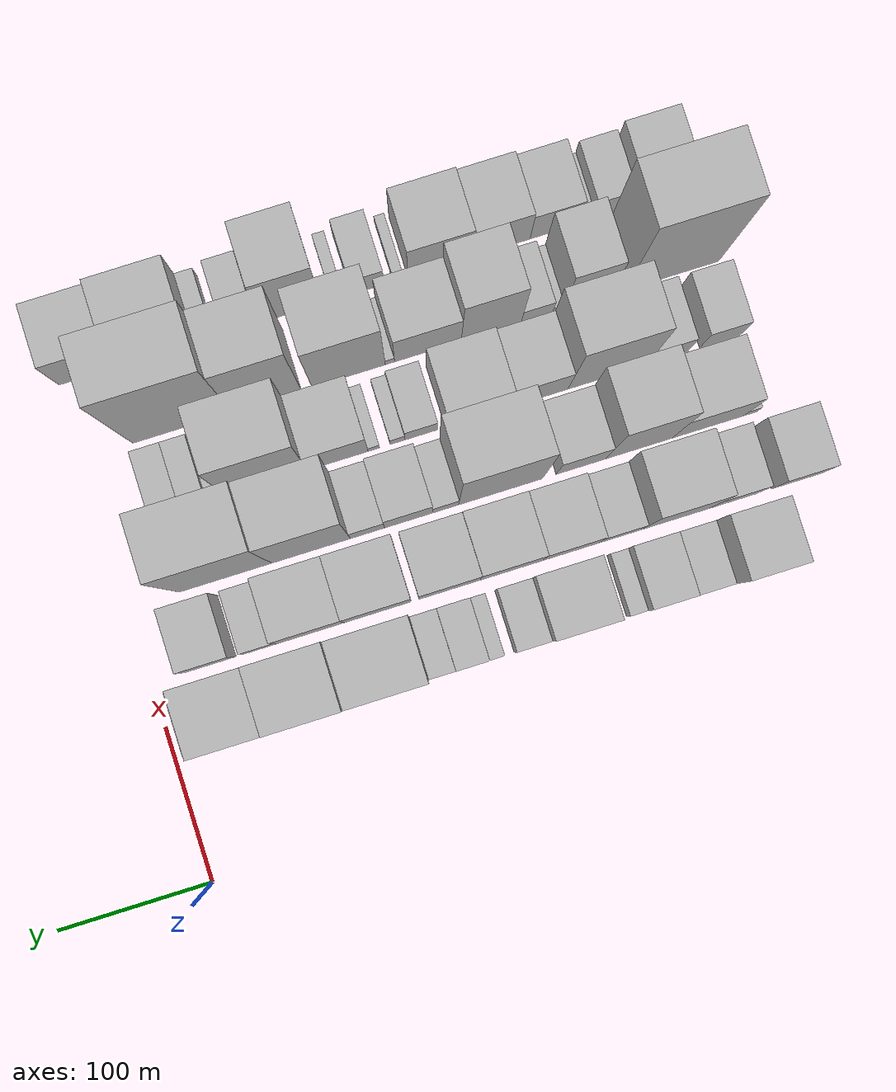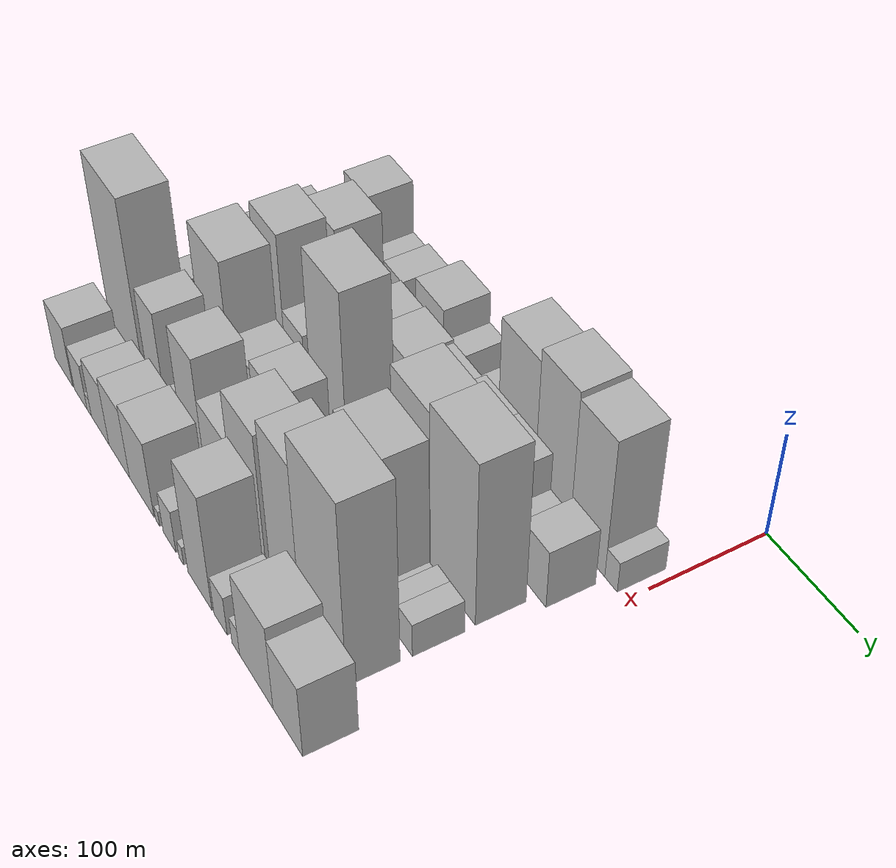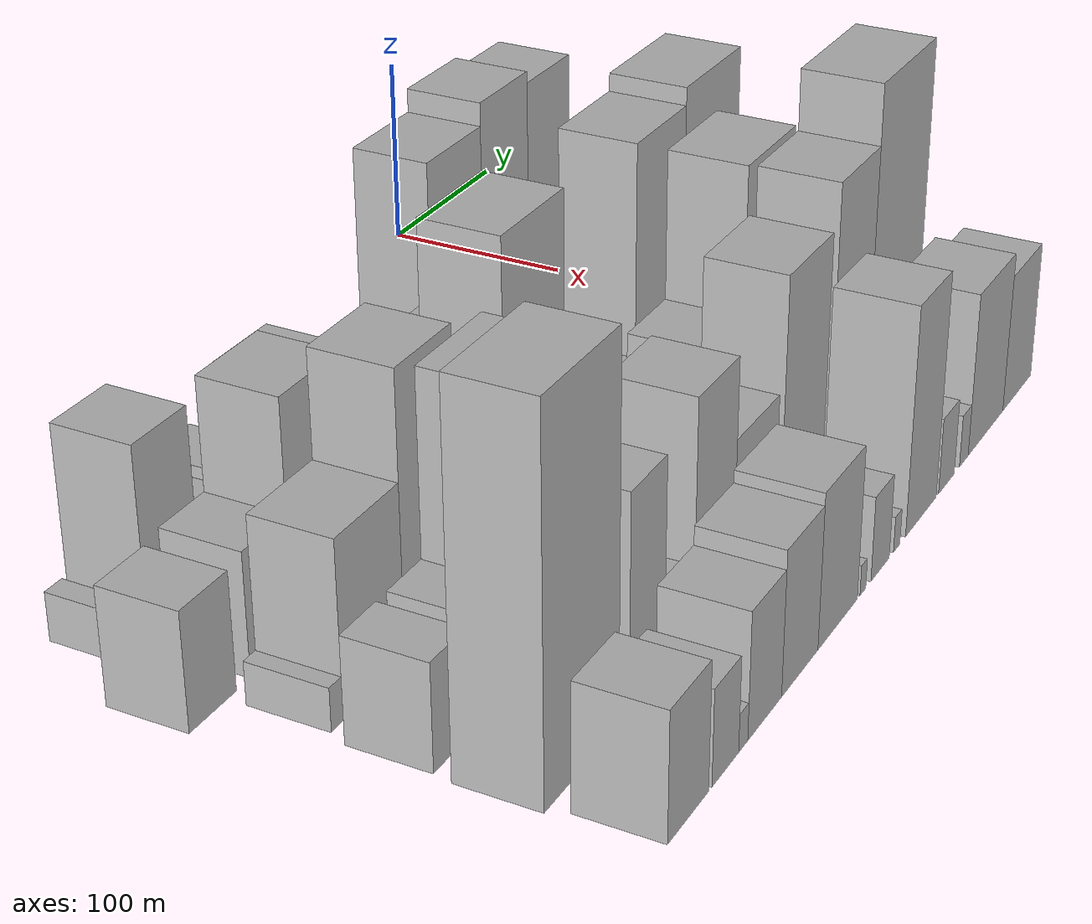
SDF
<sdf version="1.6">
 <world name="default">
  <model name="building_13">
   <static>1</static>
   <pose>100.0000 -405.1255 0 0.000000 0.000000 0.000000</pose>
   <link name="link">
    <pose>0 0 12.00 0 0 0</pose>
    <collision name="collision"><geometry><box><size>40.0000 11.6210 24.0000</size></box></geometry></collision>
    <visual name="visual">
     <cast_shadows>0</cast_shadows>
     <geometry><box><size>40.0000 11.6210 24.0000</size></box></geometry>
     <material>
      <script>
       <uri>model://HANNAS_wall/materials/scripts</uri>
       <uri>model://HANNAS_wall/materials/textures</uri>
       <name>vrc/HANNAS_wall</name>
      </script>
     </material>
    </visual>
   </link>
  </model>
  <model name="building_14">
   <static>1</static>
   <pose>100.0000 -377.6499 0 0.000000 0.000000 0.000000</pose>
   <link name="link">
    <pose>0 0 48.00 0 0 0</pose>
    <collision name="collision"><geometry><box><size>40.0000 37.3301 96.0000</size></box></geometry></collision>
    <visual name="visual">
     <cast_shadows>0</cast_shadows>
     <geometry><box><size>40.0000 37.3301 96.0000</size></box></geometry>
     <material>
      <script>
       <uri>model://HANNAS_wall/materials/scripts</uri>
       <uri>model://HANNAS_wall/materials/textures</uri>
       <name>vrc/HANNAS_wall</name>
      </script>
     </material>
    </visual>
   </link>
  </model>
  <model name="building_15">
   <static>1</static>
   <pose>100.0000 -346.9842 0 0.000000 0.000000 0.000000</pose>
   <link name="link">
    <pose>0 0 22.50 0 0 0</pose>
    <collision name="collision"><geometry><box><size>40.0000 24.0015 45.0000</size></box></geometry></collision>
    <visual name="visual">
     <cast_shadows>0</cast_shadows>
     <geometry><box><size>40.0000 24.0015 45.0000</size></box></geometry>
     <material>
      <script>
       <uri>model://HANNAS_wall/materials/scripts</uri>
       <uri>model://HANNAS_wall/materials/textures</uri>
       <name>vrc/HANNAS_wall</name>
      </script>
     </material>
    </visual>
   </link>
  </model>
  <model name="building_16">
   <static>1</static>
   <pose>100.0000 -320.3725 0 0.000000 0.000000 0.000000</pose>
   <link name="link">
    <pose>0 0 25.50 0 0 0</pose>
    <collision name="collision"><geometry><box><size>40.0000 29.2219 51.0000</size></box></geometry></collision>
    <visual name="visual">
     <cast_shadows>0</cast_shadows>
     <geometry><box><size>40.0000 29.2219 51.0000</size></box></geometry>
     <material>
      <script>
       <uri>model://HANNAS_wall/materials/scripts</uri>
       <uri>model://HANNAS_wall/materials/textures</uri>
       <name>vrc/HANNAS_wall</name>
      </script>
     </material>
    </visual>
   </link>
  </model>
  <model name="building_17">
   <static>1</static>
   <pose>100.0000 -300.0065 0 0.000000 0.000000 0.000000</pose>
   <link name="link">
    <pose>0 0 12.00 0 0 0</pose>
    <collision name="collision"><geometry><box><size>40.0000 11.5102 24.0000</size></box></geometry></collision>
    <visual name="visual">
     <cast_shadows>0</cast_shadows>
     <geometry><box><size>40.0000 11.5102 24.0000</size></box></geometry>
     <material>
      <script>
       <uri>model://HANNAS_wall/materials/scripts</uri>
       <uri>model://HANNAS_wall/materials/textures</uri>
       <name>vrc/HANNAS_wall</name>
      </script>
     </material>
    </visual>
   </link>
  </model>
  <model name="building_18">
   <static>1</static>
   <pose>100.0000 -264.2388 0 0.000000 0.000000 0.000000</pose>
   <link name="link">
    <pose>0 0 36.00 0 0 0</pose>
    <collision name="collision"><geometry><box><size>40.0000 42.0253 72.0000</size></box></geometry></collision>
    <visual name="visual">
     <cast_shadows>0</cast_shadows>
     <geometry><box><size>40.0000 42.0253 72.0000</size></box></geometry>
     <material>
      <script>
       <uri>model://HANNAS_wall/materials/scripts</uri>
       <uri>model://HANNAS_wall/materials/textures</uri>
       <name>vrc/HANNAS_wall</name>
      </script>
     </material>
    </visual>
   </link>
  </model>
  <model name="building_19">
   <static>1</static>
   <pose>100.0000 -231.9857 0 0.000000 0.000000 0.000000</pose>
   <link name="link">
    <pose>0 0 21.00 0 0 0</pose>
    <collision name="collision"><geometry><box><size>40.0000 22.4809 42.0000</size></box></geometry></collision>
    <visual name="visual">
     <cast_shadows>0</cast_shadows>
     <geometry><box><size>40.0000 22.4809 42.0000</size></box></geometry>
     <material>
      <script>
       <uri>model://HANNAS_wall/materials/scripts</uri>
       <uri>model://HANNAS_wall/materials/textures</uri>
       <name>vrc/HANNAS_wall</name>
      </script>
     </material>
    </visual>
   </link>
  </model>
  <model name="building_20">
   <static>1</static>
   <pose>100.0000 -208.7718 0 0.000000 0.000000 0.000000</pose>
   <link name="link">
    <pose>0 0 12.00 0 0 0</pose>
    <collision name="collision"><geometry><box><size>40.0000 9.9469 24.0000</size></box></geometry></collision>
    <visual name="visual">
     <cast_shadows>0</cast_shadows>
     <geometry><box><size>40.0000 9.9469 24.0000</size></box></geometry>
     <material>
      <script>
       <uri>model://HANNAS_wall/materials/scripts</uri>
       <uri>model://HANNAS_wall/materials/textures</uri>
       <name>vrc/HANNAS_wall</name>
      </script>
     </material>
    </visual>
   </link>
  </model>
  <model name="building_21">
   <static>1</static>
   <pose>100.0000 -193.0717 0 0.000000 0.000000 0.000000</pose>
   <link name="link">
    <pose>0 0 18.00 0 0 0</pose>
    <collision name="collision"><geometry><box><size>40.0000 21.4533 36.0000</size></box></geometry></collision>
    <visual name="visual">
     <cast_shadows>0</cast_shadows>
     <geometry><box><size>40.0000 21.4533 36.0000</size></box></geometry>
     <material>
      <script>
       <uri>model://HANNAS_wall/materials/scripts</uri>
       <uri>model://HANNAS_wall/materials/textures</uri>
       <name>vrc/HANNAS_wall</name>
      </script>
     </material>
    </visual>
   </link>
  </model>
  <model name="building_22">
   <static>1</static>
   <pose>100.0000 -173.7144 0 0.000000 0.000000 0.000000</pose>
   <link name="link">
    <pose>0 0 15.00 0 0 0</pose>
    <collision name="collision"><geometry><box><size>40.0000 17.2611 30.0000</size></box></geometry></collision>
    <visual name="visual">
     <cast_shadows>0</cast_shadows>
     <geometry><box><size>40.0000 17.2611 30.0000</size></box></geometry>
     <material>
      <script>
       <uri>model://HANNAS_wall/materials/scripts</uri>
       <uri>model://HANNAS_wall/materials/textures</uri>
       <name>vrc/HANNAS_wall</name>
      </script>
     </material>
    </visual>
   </link>
  </model>
  <model name="building_23">
   <static>1</static>
   <pose>100.0000 -139.9668 0 0.000000 0.000000 0.000000</pose>
   <link name="link">
    <pose>0 0 64.50 0 0 0</pose>
    <collision name="collision"><geometry><box><size>40.0000 50.2341 129.0000</size></box></geometry></collision>
    <visual name="visual">
     <cast_shadows>0</cast_shadows>
     <geometry><box><size>40.0000 50.2341 129.0000</size></box></geometry>
     <material>
      <script>
       <uri>model://HANNAS_wall/materials/scripts</uri>
       <uri>model://HANNAS_wall/materials/textures</uri>
       <name>vrc/HANNAS_wall</name>
      </script>
     </material>
    </visual>
   </link>
  </model>
  <model name="building_24">
   <static>1</static>
   <pose>100.0000 -91.5264 0 0.000000 0.000000 0.000000</pose>
   <link name="link">
    <pose>0 0 70.50 0 0 0</pose>
    <collision name="collision"><geometry><box><size>40.0000 46.6467 141.0000</size></box></geometry></collision>
    <visual name="visual">
     <cast_shadows>0</cast_shadows>
     <geometry><box><size>40.0000 46.6467 141.0000</size></box></geometry>
     <material>
      <script>
       <uri>model://HANNAS_wall/materials/scripts</uri>
       <uri>model://HANNAS_wall/materials/textures</uri>
       <name>vrc/HANNAS_wall</name>
      </script>
     </material>
    </visual>
   </link>
  </model>
  <model name="building_25">
   <static>1</static>
   <pose>100.0000 -46.1873 0 0.000000 0.000000 0.000000</pose>
   <link name="link">
    <pose>0 0 67.50 0 0 0</pose>
    <collision name="collision"><geometry><box><size>40.0000 44.0315 135.0000</size></box></geometry></collision>
    <visual name="visual">
     <cast_shadows>0</cast_shadows>
     <geometry><box><size>40.0000 44.0315 135.0000</size></box></geometry>
     <material>
      <script>
       <uri>model://HANNAS_wall/materials/scripts</uri>
       <uri>model://HANNAS_wall/materials/textures</uri>
       <name>vrc/HANNAS_wall</name>
      </script>
     </material>
    </visual>
   </link>
  </model>
  <model name="building_26">
   <static>1</static>
   <pose>100.0000 -16.5393 0 0.000000 0.000000 0.000000</pose>
   <link name="link">
    <pose>0 0 15.00 0 0 0</pose>
    <collision name="collision"><geometry><box><size>40.0000 15.2647 30.0000</size></box></geometry></collision>
    <visual name="visual">
     <cast_shadows>0</cast_shadows>
     <geometry><box><size>40.0000 15.2647 30.0000</size></box></geometry>
     <material>
      <script>
       <uri>model://HANNAS_wall/materials/scripts</uri>
       <uri>model://HANNAS_wall/materials/textures</uri>
       <name>vrc/HANNAS_wall</name>
      </script>
     </material>
    </visual>
   </link>
  </model>
  <model name="building_63">
   <static>1</static>
   <pose>149.0000 -421.5422 0 0.000000 0.000000 0.000000</pose>
   <link name="link">
    <pose>0 0 28.50 0 0 0</pose>
    <collision name="collision"><geometry><box><size>40.0000 32.6156 57.0000</size></box></geometry></collision>
    <visual name="visual">
     <cast_shadows>0</cast_shadows>
     <geometry><box><size>40.0000 32.6156 57.0000</size></box></geometry>
     <material>
      <script>
       <uri>model://HANNAS_wall/materials/scripts</uri>
       <uri>model://HANNAS_wall/materials/textures</uri>
       <name>vrc/HANNAS_wall</name>
      </script>
     </material>
    </visual>
   </link>
  </model>
  <model name="building_64">
   <static>1</static>
   <pose>149.0000 -379.3378 0 0.000000 0.000000 0.000000</pose>
   <link name="link">
    <pose>0 0 30.00 0 0 0</pose>
    <collision name="collision"><geometry><box><size>40.0000 31.7932 60.0000</size></box></geometry></collision>
    <visual name="visual">
     <cast_shadows>0</cast_shadows>
     <geometry><box><size>40.0000 31.7932 60.0000</size></box></geometry>
     <material>
      <script>
       <uri>model://HANNAS_wall/materials/scripts</uri>
       <uri>model://HANNAS_wall/materials/textures</uri>
       <name>vrc/HANNAS_wall</name>
      </script>
     </material>
    </visual>
   </link>
  </model>
  <model name="building_65">
   <static>1</static>
   <pose>149.0000 -341.0278 0 0.000000 0.000000 0.000000</pose>
   <link name="link">
    <pose>0 0 57.00 0 0 0</pose>
    <collision name="collision"><geometry><box><size>40.0000 44.8268 114.0000</size></box></geometry></collision>
    <visual name="visual">
     <cast_shadows>0</cast_shadows>
     <geometry><box><size>40.0000 44.8268 114.0000</size></box></geometry>
     <material>
      <script>
       <uri>model://HANNAS_wall/materials/scripts</uri>
       <uri>model://HANNAS_wall/materials/textures</uri>
       <name>vrc/HANNAS_wall</name>
      </script>
     </material>
    </visual>
   </link>
  </model>
  <model name="building_66">
   <static>1</static>
   <pose>149.0000 -304.8907 0 0.000000 0.000000 0.000000</pose>
   <link name="link">
    <pose>0 0 25.50 0 0 0</pose>
    <collision name="collision"><geometry><box><size>40.0000 27.4474 51.0000</size></box></geometry></collision>
    <visual name="visual">
     <cast_shadows>0</cast_shadows>
     <geometry><box><size>40.0000 27.4474 51.0000</size></box></geometry>
     <material>
      <script>
       <uri>model://HANNAS_wall/materials/scripts</uri>
       <uri>model://HANNAS_wall/materials/textures</uri>
       <name>vrc/HANNAS_wall</name>
      </script>
     </material>
    </visual>
   </link>
  </model>
  <model name="building_67">
   <static>1</static>
   <pose>149.0000 -272.8662 0 0.000000 0.000000 0.000000</pose>
   <link name="link">
    <pose>0 0 34.50 0 0 0</pose>
    <collision name="collision"><geometry><box><size>40.0000 36.6015 69.0000</size></box></geometry></collision>
    <visual name="visual">
     <cast_shadows>0</cast_shadows>
     <geometry><box><size>40.0000 36.6015 69.0000</size></box></geometry>
     <material>
      <script>
       <uri>model://HANNAS_wall/materials/scripts</uri>
       <uri>model://HANNAS_wall/materials/textures</uri>
       <name>vrc/HANNAS_wall</name>
      </script>
     </material>
    </visual>
   </link>
  </model>
  <model name="building_68">
   <static>1</static>
   <pose>149.0000 -234.0874 0 0.000000 0.000000 0.000000</pose>
   <link name="link">
    <pose>0 0 36.00 0 0 0</pose>
    <collision name="collision"><geometry><box><size>40.0000 40.9562 72.0000</size></box></geometry></collision>
    <visual name="visual">
     <cast_shadows>0</cast_shadows>
     <geometry><box><size>40.0000 40.9562 72.0000</size></box></geometry>
     <material>
      <script>
       <uri>model://HANNAS_wall/materials/scripts</uri>
       <uri>model://HANNAS_wall/materials/textures</uri>
       <name>vrc/HANNAS_wall</name>
      </script>
     </material>
    </visual>
   </link>
  </model>
  <model name="building_69">
   <static>1</static>
   <pose>149.0000 -193.8762 0 0.000000 0.000000 0.000000</pose>
   <link name="link">
    <pose>0 0 34.50 0 0 0</pose>
    <collision name="collision"><geometry><box><size>40.0000 39.4663 69.0000</size></box></geometry></collision>
    <visual name="visual">
     <cast_shadows>0</cast_shadows>
     <geometry><box><size>40.0000 39.4663 69.0000</size></box></geometry>
     <material>
      <script>
       <uri>model://HANNAS_wall/materials/scripts</uri>
       <uri>model://HANNAS_wall/materials/textures</uri>
       <name>vrc/HANNAS_wall</name>
      </script>
     </material>
    </visual>
   </link>
  </model>
  <model name="building_70">
   <static>1</static>
   <pose>149.0000 -147.4751 0 0.000000 0.000000 0.000000</pose>
   <link name="link">
    <pose>0 0 37.50 0 0 0</pose>
    <collision name="collision"><geometry><box><size>40.0000 43.3359 75.0000</size></box></geometry></collision>
    <visual name="visual">
     <cast_shadows>0</cast_shadows>
     <geometry><box><size>40.0000 43.3359 75.0000</size></box></geometry>
     <material>
      <script>
       <uri>model://HANNAS_wall/materials/scripts</uri>
       <uri>model://HANNAS_wall/materials/textures</uri>
       <name>vrc/HANNAS_wall</name>
      </script>
     </material>
    </visual>
   </link>
  </model>
  <model name="building_71">
   <static>1</static>
   <pose>149.0000 -103.8714 0 0.000000 0.000000 0.000000</pose>
   <link name="link">
    <pose>0 0 37.50 0 0 0</pose>
    <collision name="collision"><geometry><box><size>40.0000 43.8713 75.0000</size></box></geometry></collision>
    <visual name="visual">
     <cast_shadows>0</cast_shadows>
     <geometry><box><size>40.0000 43.8713 75.0000</size></box></geometry>
     <material>
      <script>
       <uri>model://HANNAS_wall/materials/scripts</uri>
       <uri>model://HANNAS_wall/materials/textures</uri>
       <name>vrc/HANNAS_wall</name>
      </script>
     </material>
    </visual>
   </link>
  </model>
  <model name="building_72">
   <static>1</static>
   <pose>149.0000 -70.8839 0 0.000000 0.000000 0.000000</pose>
   <link name="link">
    <pose>0 0 19.50 0 0 0</pose>
    <collision name="collision"><geometry><box><size>40.0000 22.1037 39.0000</size></box></geometry></collision>
    <visual name="visual">
     <cast_shadows>0</cast_shadows>
     <geometry><box><size>40.0000 22.1037 39.0000</size></box></geometry>
     <material>
      <script>
       <uri>model://HANNAS_wall/materials/scripts</uri>
       <uri>model://HANNAS_wall/materials/textures</uri>
       <name>vrc/HANNAS_wall</name>
      </script>
     </material>
    </visual>
   </link>
  </model>
  <model name="building_73">
   <static>1</static>
   <pose>149.0000 -38.4208 0 0.000000 0.000000 0.000000</pose>
   <link name="link">
    <pose>0 0 28.50 0 0 0</pose>
    <collision name="collision"><geometry><box><size>40.0000 32.8227 57.0000</size></box></geometry></collision>
    <visual name="visual">
     <cast_shadows>0</cast_shadows>
     <geometry><box><size>40.0000 32.8227 57.0000</size></box></geometry>
     <material>
      <script>
       <uri>model://HANNAS_wall/materials/scripts</uri>
       <uri>model://HANNAS_wall/materials/textures</uri>
       <name>vrc/HANNAS_wall</name>
      </script>
     </material>
    </visual>
   </link>
  </model>
  <model name="building_109">
   <static>1</static>
   <pose>198.0000 -407.2292 0 0.000000 0.000000 0.000000</pose>
   <link name="link">
    <pose>0 0 10.50 0 0 0</pose>
    <collision name="collision"><geometry><box><size>40.0000 8.7447 21.0000</size></box></geometry></collision>
    <visual name="visual">
     <cast_shadows>0</cast_shadows>
     <geometry><box><size>40.0000 8.7447 21.0000</size></box></geometry>
     <material>
      <script>
       <uri>model://HANNAS_wall/materials/scripts</uri>
       <uri>model://HANNAS_wall/materials/textures</uri>
       <name>vrc/HANNAS_wall</name>
      </script>
     </material>
    </visual>
   </link>
  </model>
  <model name="building_110">
   <static>1</static>
   <pose>198.0000 -379.2170 0 0.000000 0.000000 0.000000</pose>
   <link name="link">
    <pose>0 0 42.00 0 0 0</pose>
    <collision name="collision"><geometry><box><size>40.0000 47.2797 84.0000</size></box></geometry></collision>
    <visual name="visual">
     <cast_shadows>0</cast_shadows>
     <geometry><box><size>40.0000 47.2797 84.0000</size></box></geometry>
     <material>
      <script>
       <uri>model://HANNAS_wall/materials/scripts</uri>
       <uri>model://HANNAS_wall/materials/textures</uri>
       <name>vrc/HANNAS_wall</name>
      </script>
     </material>
    </visual>
   </link>
  </model>
  <model name="building_111">
   <static>1</static>
   <pose>198.0000 -333.7840 0 0.000000 0.000000 0.000000</pose>
   <link name="link">
    <pose>0 0 67.50 0 0 0</pose>
    <collision name="collision"><geometry><box><size>40.0000 43.5863 135.0000</size></box></geometry></collision>
    <visual name="visual">
     <cast_shadows>0</cast_shadows>
     <geometry><box><size>40.0000 43.5863 135.0000</size></box></geometry>
     <material>
      <script>
       <uri>model://HANNAS_wall/materials/scripts</uri>
       <uri>model://HANNAS_wall/materials/textures</uri>
       <name>vrc/HANNAS_wall</name>
      </script>
     </material>
    </visual>
   </link>
  </model>
  <model name="building_112">
   <static>1</static>
   <pose>198.0000 -295.6732 0 0.000000 0.000000 0.000000</pose>
   <link name="link">
    <pose>0 0 31.50 0 0 0</pose>
    <collision name="collision"><geometry><box><size>40.0000 32.6353 63.0000</size></box></geometry></collision>
    <visual name="visual">
     <cast_shadows>0</cast_shadows>
     <geometry><box><size>40.0000 32.6353 63.0000</size></box></geometry>
     <material>
      <script>
       <uri>model://HANNAS_wall/materials/scripts</uri>
       <uri>model://HANNAS_wall/materials/textures</uri>
       <name>vrc/HANNAS_wall</name>
      </script>
     </material>
    </visual>
   </link>
  </model>
  <model name="building_113">
   <static>1</static>
   <pose>198.0000 -242.8167 0 0.000000 0.000000 0.000000</pose>
   <link name="link">
    <pose>0 0 78.00 0 0 0</pose>
    <collision name="collision"><geometry><box><size>40.0000 55.0778 156.0000</size></box></geometry></collision>
    <visual name="visual">
     <cast_shadows>0</cast_shadows>
     <geometry><box><size>40.0000 55.0778 156.0000</size></box></geometry>
     <material>
      <script>
       <uri>model://HANNAS_wall/materials/scripts</uri>
       <uri>model://HANNAS_wall/materials/textures</uri>
       <name>vrc/HANNAS_wall</name>
      </script>
     </material>
    </visual>
   </link>
  </model>
  <model name="building_114">
   <static>1</static>
   <pose>198.0000 -206.8111 0 0.000000 0.000000 0.000000</pose>
   <link name="link">
    <pose>0 0 16.50 0 0 0</pose>
    <collision name="collision"><geometry><box><size>40.0000 16.9333 33.0000</size></box></geometry></collision>
    <visual name="visual">
     <cast_shadows>0</cast_shadows>
     <geometry><box><size>40.0000 16.9333 33.0000</size></box></geometry>
     <material>
      <script>
       <uri>model://HANNAS_wall/materials/scripts</uri>
       <uri>model://HANNAS_wall/materials/textures</uri>
       <name>vrc/HANNAS_wall</name>
      </script>
     </material>
    </visual>
   </link>
  </model>
  <model name="building_115">
   <static>1</static>
   <pose>198.0000 -182.6669 0 0.000000 0.000000 0.000000</pose>
   <link name="link">
    <pose>0 0 27.00 0 0 0</pose>
    <collision name="collision"><geometry><box><size>40.0000 31.3551 54.0000</size></box></geometry></collision>
    <visual name="visual">
     <cast_shadows>0</cast_shadows>
     <geometry><box><size>40.0000 31.3551 54.0000</size></box></geometry>
     <material>
      <script>
       <uri>model://HANNAS_wall/materials/scripts</uri>
       <uri>model://HANNAS_wall/materials/textures</uri>
       <name>vrc/HANNAS_wall</name>
      </script>
     </material>
    </visual>
   </link>
  </model>
  <model name="building_116">
   <static>1</static>
   <pose>198.0000 -155.8377 0 0.000000 0.000000 0.000000</pose>
   <link name="link">
    <pose>0 0 21.00 0 0 0</pose>
    <collision name="collision"><geometry><box><size>40.0000 22.3034 42.0000</size></box></geometry></collision>
    <visual name="visual">
     <cast_shadows>0</cast_shadows>
     <geometry><box><size>40.0000 22.3034 42.0000</size></box></geometry>
     <material>
      <script>
       <uri>model://HANNAS_wall/materials/scripts</uri>
       <uri>model://HANNAS_wall/materials/textures</uri>
       <name>vrc/HANNAS_wall</name>
      </script>
     </material>
    </visual>
   </link>
  </model>
  <model name="building_117">
   <static>1</static>
   <pose>198.0000 -119.0291 0 0.000000 0.000000 0.000000</pose>
   <link name="link">
    <pose>0 0 75.00 0 0 0</pose>
    <collision name="collision"><geometry><box><size>40.0000 51.3139 150.0000</size></box></geometry></collision>
    <visual name="visual">
     <cast_shadows>0</cast_shadows>
     <geometry><box><size>40.0000 51.3139 150.0000</size></box></geometry>
     <material>
      <script>
       <uri>model://HANNAS_wall/materials/scripts</uri>
       <uri>model://HANNAS_wall/materials/textures</uri>
       <name>vrc/HANNAS_wall</name>
      </script>
     </material>
    </visual>
   </link>
  </model>
  <model name="building_118">
   <static>1</static>
   <pose>198.0000 -63.1386 0 0.000000 0.000000 0.000000</pose>
   <link name="link">
    <pose>0 0 79.50 0 0 0</pose>
    <collision name="collision"><geometry><box><size>40.0000 60.4671 159.0000</size></box></geometry></collision>
    <visual name="visual">
     <cast_shadows>0</cast_shadows>
     <geometry><box><size>40.0000 60.4671 159.0000</size></box></geometry>
     <material>
      <script>
       <uri>model://HANNAS_wall/materials/scripts</uri>
       <uri>model://HANNAS_wall/materials/textures</uri>
       <name>vrc/HANNAS_wall</name>
      </script>
     </material>
    </visual>
   </link>
  </model>
  <model name="building_157">
   <static>1</static>
   <pose>247.0000 -402.8592 0 0.000000 0.000000 0.000000</pose>
   <link name="link">
    <pose>0 0 25.50 0 0 0</pose>
    <collision name="collision"><geometry><box><size>40.0000 26.7022 51.0000</size></box></geometry></collision>
    <visual name="visual">
     <cast_shadows>0</cast_shadows>
     <geometry><box><size>40.0000 26.7022 51.0000</size></box></geometry>
     <material>
      <script>
       <uri>model://HANNAS_wall/materials/scripts</uri>
       <uri>model://HANNAS_wall/materials/textures</uri>
       <name>vrc/HANNAS_wall</name>
      </script>
     </material>
    </visual>
   </link>
  </model>
  <model name="building_158">
   <static>1</static>
   <pose>247.0000 -368.2340 0 0.000000 0.000000 0.000000</pose>
   <link name="link">
    <pose>0 0 25.50 0 0 0</pose>
    <collision name="collision"><geometry><box><size>40.0000 26.5482 51.0000</size></box></geometry></collision>
    <visual name="visual">
     <cast_shadows>0</cast_shadows>
     <geometry><box><size>40.0000 26.5482 51.0000</size></box></geometry>
     <material>
      <script>
       <uri>model://HANNAS_wall/materials/scripts</uri>
       <uri>model://HANNAS_wall/materials/textures</uri>
       <name>vrc/HANNAS_wall</name>
      </script>
     </material>
    </visual>
   </link>
  </model>
  <model name="building_159">
   <static>1</static>
   <pose>247.0000 -328.7806 0 0.000000 0.000000 0.000000</pose>
   <link name="link">
    <pose>0 0 69.00 0 0 0</pose>
    <collision name="collision"><geometry><box><size>40.0000 52.3585 138.0000</size></box></geometry></collision>
    <visual name="visual">
     <cast_shadows>0</cast_shadows>
     <geometry><box><size>40.0000 52.3585 138.0000</size></box></geometry>
     <material>
      <script>
       <uri>model://HANNAS_wall/materials/scripts</uri>
       <uri>model://HANNAS_wall/materials/textures</uri>
       <name>vrc/HANNAS_wall</name>
      </script>
     </material>
    </visual>
   </link>
  </model>
  <model name="building_160">
   <static>1</static>
   <pose>247.0000 -283.8976 0 0.000000 0.000000 0.000000</pose>
   <link name="link">
    <pose>0 0 33.00 0 0 0</pose>
    <collision name="collision"><geometry><box><size>40.0000 37.4075 66.0000</size></box></geometry></collision>
    <visual name="visual">
     <cast_shadows>0</cast_shadows>
     <geometry><box><size>40.0000 37.4075 66.0000</size></box></geometry>
     <material>
      <script>
       <uri>model://HANNAS_wall/materials/scripts</uri>
       <uri>model://HANNAS_wall/materials/textures</uri>
       <name>vrc/HANNAS_wall</name>
      </script>
     </material>
    </visual>
   </link>
  </model>
  <model name="building_161">
   <static>1</static>
   <pose>247.0000 -243.5688 0 0.000000 0.000000 0.000000</pose>
   <link name="link">
    <pose>0 0 37.50 0 0 0</pose>
    <collision name="collision"><geometry><box><size>40.0000 43.2501 75.0000</size></box></geometry></collision>
    <visual name="visual">
     <cast_shadows>0</cast_shadows>
     <geometry><box><size>40.0000 43.2501 75.0000</size></box></geometry>
     <material>
      <script>
       <uri>model://HANNAS_wall/materials/scripts</uri>
       <uri>model://HANNAS_wall/materials/textures</uri>
       <name>vrc/HANNAS_wall</name>
      </script>
     </material>
    </visual>
   </link>
  </model>
  <model name="building_162">
   <static>1</static>
   <pose>247.0000 -206.2387 0 0.000000 0.000000 0.000000</pose>
   <link name="link">
    <pose>0 0 18.00 0 0 0</pose>
    <collision name="collision"><geometry><box><size>40.0000 21.4102 36.0000</size></box></geometry></collision>
    <visual name="visual">
     <cast_shadows>0</cast_shadows>
     <geometry><box><size>40.0000 21.4102 36.0000</size></box></geometry>
     <material>
      <script>
       <uri>model://HANNAS_wall/materials/scripts</uri>
       <uri>model://HANNAS_wall/materials/textures</uri>
       <name>vrc/HANNAS_wall</name>
      </script>
     </material>
    </visual>
   </link>
  </model>
  <model name="building_163">
   <static>1</static>
   <pose>247.0000 -190.7143 0 0.000000 0.000000 0.000000</pose>
   <link name="link">
    <pose>0 0 10.50 0 0 0</pose>
    <collision name="collision"><geometry><box><size>40.0000 9.6386 21.0000</size></box></geometry></collision>
    <visual name="visual">
     <cast_shadows>0</cast_shadows>
     <geometry><box><size>40.0000 9.6386 21.0000</size></box></geometry>
     <material>
      <script>
       <uri>model://HANNAS_wall/materials/scripts</uri>
       <uri>model://HANNAS_wall/materials/textures</uri>
       <name>vrc/HANNAS_wall</name>
      </script>
     </material>
    </visual>
   </link>
  </model>
  <model name="building_164">
   <static>1</static>
   <pose>247.0000 -175.1454 0 0.000000 0.000000 0.000000</pose>
   <link name="link">
    <pose>0 0 7.50 0 0 0</pose>
    <collision name="collision"><geometry><box><size>40.0000 7.4994 15.0000</size></box></geometry></collision>
    <visual name="visual">
     <cast_shadows>0</cast_shadows>
     <geometry><box><size>40.0000 7.4994 15.0000</size></box></geometry>
     <material>
      <script>
       <uri>model://HANNAS_wall/materials/scripts</uri>
       <uri>model://HANNAS_wall/materials/textures</uri>
       <name>vrc/HANNAS_wall</name>
      </script>
     </material>
    </visual>
   </link>
  </model>
  <model name="building_165">
   <static>1</static>
   <pose>247.0000 -151.5952 0 0.000000 0.000000 0.000000</pose>
   <link name="link">
    <pose>0 0 34.50 0 0 0</pose>
    <collision name="collision"><geometry><box><size>40.0000 39.6010 69.0000</size></box></geometry></collision>
    <visual name="visual">
     <cast_shadows>0</cast_shadows>
     <geometry><box><size>40.0000 39.6010 69.0000</size></box></geometry>
     <material>
      <script>
       <uri>model://HANNAS_wall/materials/scripts</uri>
       <uri>model://HANNAS_wall/materials/textures</uri>
       <name>vrc/HANNAS_wall</name>
      </script>
     </material>
    </visual>
   </link>
  </model>
  <model name="building_166">
   <static>1</static>
   <pose>247.0000 -105.1403 0 0.000000 0.000000 0.000000</pose>
   <link name="link">
    <pose>0 0 72.00 0 0 0</pose>
    <collision name="collision"><geometry><box><size>40.0000 53.3087 144.0000</size></box></geometry></collision>
    <visual name="visual">
     <cast_shadows>0</cast_shadows>
     <geometry><box><size>40.0000 53.3087 144.0000</size></box></geometry>
     <material>
      <script>
       <uri>model://HANNAS_wall/materials/scripts</uri>
       <uri>model://HANNAS_wall/materials/textures</uri>
       <name>vrc/HANNAS_wall</name>
      </script>
     </material>
    </visual>
   </link>
  </model>
  <model name="building_167">
   <static>1</static>
   <pose>247.0000 -73.0624 0 0.000000 0.000000 0.000000</pose>
   <link name="link">
    <pose>0 0 12.00 0 0 0</pose>
    <collision name="collision"><geometry><box><size>40.0000 10.8471 24.0000</size></box></geometry></collision>
    <visual name="visual">
     <cast_shadows>0</cast_shadows>
     <geometry><box><size>40.0000 10.8471 24.0000</size></box></geometry>
     <material>
      <script>
       <uri>model://HANNAS_wall/materials/scripts</uri>
       <uri>model://HANNAS_wall/materials/textures</uri>
       <name>vrc/HANNAS_wall</name>
      </script>
     </material>
    </visual>
   </link>
  </model>
  <model name="building_168">
   <static>1</static>
   <pose>247.0000 -59.3707 0 0.000000 0.000000 0.000000</pose>
   <link name="link">
    <pose>0 0 16.50 0 0 0</pose>
    <collision name="collision"><geometry><box><size>40.0000 16.5364 33.0000</size></box></geometry></collision>
    <visual name="visual">
     <cast_shadows>0</cast_shadows>
     <geometry><box><size>40.0000 16.5364 33.0000</size></box></geometry>
     <material>
      <script>
       <uri>model://HANNAS_wall/materials/scripts</uri>
       <uri>model://HANNAS_wall/materials/textures</uri>
       <name>vrc/HANNAS_wall</name>
      </script>
     </material>
    </visual>
   </link>
  </model>
  <model name="building_169">
   <static>1</static>
   <pose>247.0000 -41.3807 0 0.000000 0.000000 0.000000</pose>
   <link name="link">
    <pose>0 0 16.50 0 0 0</pose>
    <collision name="collision"><geometry><box><size>40.0000 19.4435 33.0000</size></box></geometry></collision>
    <visual name="visual">
     <cast_shadows>0</cast_shadows>
     <geometry><box><size>40.0000 19.4435 33.0000</size></box></geometry>
     <material>
      <script>
       <uri>model://HANNAS_wall/materials/scripts</uri>
       <uri>model://HANNAS_wall/materials/textures</uri>
       <name>vrc/HANNAS_wall</name>
      </script>
     </material>
    </visual>
   </link>
  </model>
  <model name="building_206">
   <static>1</static>
   <pose>296.0000 -387.0626 0 0.000000 0.000000 0.000000</pose>
   <link name="link">
    <pose>0 0 88.50 0 0 0</pose>
    <collision name="collision"><geometry><box><size>40.0000 62.1706 177.0000</size></box></geometry></collision>
    <visual name="visual">
     <cast_shadows>0</cast_shadows>
     <geometry><box><size>40.0000 62.1706 177.0000</size></box></geometry>
     <material>
      <script>
       <uri>model://HANNAS_wall/materials/scripts</uri>
       <uri>model://HANNAS_wall/materials/textures</uri>
       <name>vrc/HANNAS_wall</name>
      </script>
     </material>
    </visual>
   </link>
  </model>
  <model name="building_207">
   <static>1</static>
   <pose>296.0000 -331.0884 0 0.000000 0.000000 0.000000</pose>
   <link name="link">
    <pose>0 0 51.00 0 0 0</pose>
    <collision name="collision"><geometry><box><size>40.0000 31.7778 102.0000</size></box></geometry></collision>
    <visual name="visual">
     <cast_shadows>0</cast_shadows>
     <geometry><box><size>40.0000 31.7778 102.0000</size></box></geometry>
     <material>
      <script>
       <uri>model://HANNAS_wall/materials/scripts</uri>
       <uri>model://HANNAS_wall/materials/textures</uri>
       <name>vrc/HANNAS_wall</name>
      </script>
     </material>
    </visual>
   </link>
  </model>
  <model name="building_208">
   <static>1</static>
   <pose>296.0000 -311.6264 0 0.000000 0.000000 0.000000</pose>
   <link name="link">
    <pose>0 0 7.50 0 0 0</pose>
    <collision name="collision"><geometry><box><size>40.0000 7.1463 15.0000</size></box></geometry></collision>
    <visual name="visual">
     <cast_shadows>0</cast_shadows>
     <geometry><box><size>40.0000 7.1463 15.0000</size></box></geometry>
     <material>
      <script>
       <uri>model://HANNAS_wall/materials/scripts</uri>
       <uri>model://HANNAS_wall/materials/textures</uri>
       <name>vrc/HANNAS_wall</name>
      </script>
     </material>
    </visual>
   </link>
  </model>
  <model name="building_209">
   <static>1</static>
   <pose>296.0000 -297.6886 0 0.000000 0.000000 0.000000</pose>
   <link name="link">
    <pose>0 0 18.00 0 0 0</pose>
    <collision name="collision"><geometry><box><size>40.0000 20.7294 36.0000</size></box></geometry></collision>
    <visual name="visual">
     <cast_shadows>0</cast_shadows>
     <geometry><box><size>40.0000 20.7294 36.0000</size></box></geometry>
     <material>
      <script>
       <uri>model://HANNAS_wall/materials/scripts</uri>
       <uri>model://HANNAS_wall/materials/textures</uri>
       <name>vrc/HANNAS_wall</name>
      </script>
     </material>
    </visual>
   </link>
  </model>
  <model name="building_210">
   <static>1</static>
   <pose>296.0000 -267.5892 0 0.000000 0.000000 0.000000</pose>
   <link name="link">
    <pose>0 0 57.00 0 0 0</pose>
    <collision name="collision"><geometry><box><size>40.0000 39.4693 114.0000</size></box></geometry></collision>
    <visual name="visual">
     <cast_shadows>0</cast_shadows>
     <geometry><box><size>40.0000 39.4693 114.0000</size></box></geometry>
     <material>
      <script>
       <uri>model://HANNAS_wall/materials/scripts</uri>
       <uri>model://HANNAS_wall/materials/textures</uri>
       <name>vrc/HANNAS_wall</name>
      </script>
     </material>
    </visual>
   </link>
  </model>
  <model name="building_211">
   <static>1</static>
   <pose>296.0000 -225.9311 0 0.000000 0.000000 0.000000</pose>
   <link name="link">
    <pose>0 0 37.50 0 0 0</pose>
    <collision name="collision"><geometry><box><size>40.0000 43.8469 75.0000</size></box></geometry></collision>
    <visual name="visual">
     <cast_shadows>0</cast_shadows>
     <geometry><box><size>40.0000 43.8469 75.0000</size></box></geometry>
     <material>
      <script>
       <uri>model://HANNAS_wall/materials/scripts</uri>
       <uri>model://HANNAS_wall/materials/textures</uri>
       <name>vrc/HANNAS_wall</name>
      </script>
     </material>
    </visual>
   </link>
  </model>
  <model name="building_212">
   <static>1</static>
   <pose>296.0000 -200.9489 0 0.000000 0.000000 0.000000</pose>
   <link name="link">
    <pose>0 0 7.50 0 0 0</pose>
    <collision name="collision"><geometry><box><size>40.0000 6.1175 15.0000</size></box></geometry></collision>
    <visual name="visual">
     <cast_shadows>0</cast_shadows>
     <geometry><box><size>40.0000 6.1175 15.0000</size></box></geometry>
     <material>
      <script>
       <uri>model://HANNAS_wall/materials/scripts</uri>
       <uri>model://HANNAS_wall/materials/textures</uri>
       <name>vrc/HANNAS_wall</name>
      </script>
     </material>
    </visual>
   </link>
  </model>
  <model name="building_213">
   <static>1</static>
   <pose>296.0000 -173.8691 0 0.000000 0.000000 0.000000</pose>
   <link name="link">
    <pose>0 0 64.50 0 0 0</pose>
    <collision name="collision"><geometry><box><size>40.0000 48.0422 129.0000</size></box></geometry></collision>
    <visual name="visual">
     <cast_shadows>0</cast_shadows>
     <geometry><box><size>40.0000 48.0422 129.0000</size></box></geometry>
     <material>
      <script>
       <uri>model://HANNAS_wall/materials/scripts</uri>
       <uri>model://HANNAS_wall/materials/textures</uri>
       <name>vrc/HANNAS_wall</name>
      </script>
     </material>
    </visual>
   </link>
  </model>
  <model name="building_214">
   <static>1</static>
   <pose>296.0000 -120.2034 0 0.000000 0.000000 0.000000</pose>
   <link name="link">
    <pose>0 0 75.00 0 0 0</pose>
    <collision name="collision"><geometry><box><size>40.0000 45.2892 150.0000</size></box></geometry></collision>
    <visual name="visual">
     <cast_shadows>0</cast_shadows>
     <geometry><box><size>40.0000 45.2892 150.0000</size></box></geometry>
     <material>
      <script>
       <uri>model://HANNAS_wall/materials/scripts</uri>
       <uri>model://HANNAS_wall/materials/textures</uri>
       <name>vrc/HANNAS_wall</name>
      </script>
     </material>
    </visual>
   </link>
  </model>
  <model name="building_215">
   <static>1</static>
   <pose>296.0000 -64.8785 0 0.000000 0.000000 0.000000</pose>
   <link name="link">
    <pose>0 0 90.00 0 0 0</pose>
    <collision name="collision"><geometry><box><size>40.0000 65.3604 180.0000</size></box></geometry></collision>
    <visual name="visual">
     <cast_shadows>0</cast_shadows>
     <geometry><box><size>40.0000 65.3604 180.0000</size></box></geometry>
     <material>
      <script>
       <uri>model://HANNAS_wall/materials/scripts</uri>
       <uri>model://HANNAS_wall/materials/textures</uri>
       <name>vrc/HANNAS_wall</name>
      </script>
     </material>
    </visual>
   </link>
  </model>
  <model name="building_253">
   <static>1</static>
   <pose>345.0000 -395.7908 0 0.000000 0.000000 0.000000</pose>
   <link name="link">
    <pose>0 0 30.00 0 0 0</pose>
    <collision name="collision"><geometry><box><size>40.0000 35.7550 60.0000</size></box></geometry></collision>
    <visual name="visual">
     <cast_shadows>0</cast_shadows>
     <geometry><box><size>40.0000 35.7550 60.0000</size></box></geometry>
     <material>
      <script>
       <uri>model://HANNAS_wall/materials/scripts</uri>
       <uri>model://HANNAS_wall/materials/textures</uri>
       <name>vrc/HANNAS_wall</name>
      </script>
     </material>
    </visual>
   </link>
  </model>
  <model name="building_254">
   <static>1</static>
   <pose>345.0000 -362.6207 0 0.000000 0.000000 0.000000</pose>
   <link name="link">
    <pose>0 0 22.50 0 0 0</pose>
    <collision name="collision"><geometry><box><size>40.0000 24.5852 45.0000</size></box></geometry></collision>
    <visual name="visual">
     <cast_shadows>0</cast_shadows>
     <geometry><box><size>40.0000 24.5852 45.0000</size></box></geometry>
     <material>
      <script>
       <uri>model://HANNAS_wall/materials/scripts</uri>
       <uri>model://HANNAS_wall/materials/textures</uri>
       <name>vrc/HANNAS_wall</name>
      </script>
     </material>
    </visual>
   </link>
  </model>
  <model name="building_255">
   <static>1</static>
   <pose>345.0000 -346.0279 0 0.000000 0.000000 0.000000</pose>
   <link name="link">
    <pose>0 0 9.00 0 0 0</pose>
    <collision name="collision"><geometry><box><size>40.0000 8.6005 18.0000</size></box></geometry></collision>
    <visual name="visual">
     <cast_shadows>0</cast_shadows>
     <geometry><box><size>40.0000 8.6005 18.0000</size></box></geometry>
     <material>
      <script>
       <uri>model://HANNAS_wall/materials/scripts</uri>
       <uri>model://HANNAS_wall/materials/textures</uri>
       <name>vrc/HANNAS_wall</name>
      </script>
     </material>
    </visual>
   </link>
  </model>
  <model name="building_256">
   <static>1</static>
   <pose>345.0000 -325.1843 0 0.000000 0.000000 0.000000</pose>
   <link name="link">
    <pose>0 0 30.00 0 0 0</pose>
    <collision name="collision"><geometry><box><size>40.0000 33.0868 60.0000</size></box></geometry></collision>
    <visual name="visual">
     <cast_shadows>0</cast_shadows>
     <geometry><box><size>40.0000 33.0868 60.0000</size></box></geometry>
     <material>
      <script>
       <uri>model://HANNAS_wall/materials/scripts</uri>
       <uri>model://HANNAS_wall/materials/textures</uri>
       <name>vrc/HANNAS_wall</name>
      </script>
     </material>
    </visual>
   </link>
  </model>
  <model name="building_257">
   <static>1</static>
   <pose>345.0000 -289.8818 0 0.000000 0.000000 0.000000</pose>
   <link name="link">
    <pose>0 0 34.50 0 0 0</pose>
    <collision name="collision"><geometry><box><size>40.0000 37.5182 69.0000</size></box></geometry></collision>
    <visual name="visual">
     <cast_shadows>0</cast_shadows>
     <geometry><box><size>40.0000 37.5182 69.0000</size></box></geometry>
     <material>
      <script>
       <uri>model://HANNAS_wall/materials/scripts</uri>
       <uri>model://HANNAS_wall/materials/textures</uri>
       <name>vrc/HANNAS_wall</name>
      </script>
     </material>
    </visual>
   </link>
  </model>
  <model name="building_258">
   <static>1</static>
   <pose>345.0000 -249.5420 0 0.000000 0.000000 0.000000</pose>
   <link name="link">
    <pose>0 0 37.50 0 0 0</pose>
    <collision name="collision"><geometry><box><size>40.0000 43.1613 75.0000</size></box></geometry></collision>
    <visual name="visual">
     <cast_shadows>0</cast_shadows>
     <geometry><box><size>40.0000 43.1613 75.0000</size></box></geometry>
     <material>
      <script>
       <uri>model://HANNAS_wall/materials/scripts</uri>
       <uri>model://HANNAS_wall/materials/textures</uri>
       <name>vrc/HANNAS_wall</name>
      </script>
     </material>
    </visual>
   </link>
  </model>
  <model name="building_259">
   <static>1</static>
   <pose>345.0000 -221.6323 0 0.000000 0.000000 0.000000</pose>
   <link name="link">
    <pose>0 0 7.50 0 0 0</pose>
    <collision name="collision"><geometry><box><size>40.0000 6.6581 15.0000</size></box></geometry></collision>
    <visual name="visual">
     <cast_shadows>0</cast_shadows>
     <geometry><box><size>40.0000 6.6581 15.0000</size></box></geometry>
     <material>
      <script>
       <uri>model://HANNAS_wall/materials/scripts</uri>
       <uri>model://HANNAS_wall/materials/textures</uri>
       <name>vrc/HANNAS_wall</name>
      </script>
     </material>
    </visual>
   </link>
  </model>
  <model name="building_260">
   <static>1</static>
   <pose>345.0000 -201.5280 0 0.000000 0.000000 0.000000</pose>
   <link name="link">
    <pose>0 0 21.00 0 0 0</pose>
    <collision name="collision"><geometry><box><size>40.0000 21.5506 42.0000</size></box></geometry></collision>
    <visual name="visual">
     <cast_shadows>0</cast_shadows>
     <geometry><box><size>40.0000 21.5506 42.0000</size></box></geometry>
     <material>
      <script>
       <uri>model://HANNAS_wall/materials/scripts</uri>
       <uri>model://HANNAS_wall/materials/textures</uri>
       <name>vrc/HANNAS_wall</name>
      </script>
     </material>
    </visual>
   </link>
  </model>
  <model name="building_261">
   <static>1</static>
   <pose>345.0000 -181.8424 0 0.000000 0.000000 0.000000</pose>
   <link name="link">
    <pose>0 0 9.00 0 0 0</pose>
    <collision name="collision"><geometry><box><size>40.0000 7.8205 18.0000</size></box></geometry></collision>
    <visual name="visual">
     <cast_shadows>0</cast_shadows>
     <geometry><box><size>40.0000 7.8205 18.0000</size></box></geometry>
     <material>
      <script>
       <uri>model://HANNAS_wall/materials/scripts</uri>
       <uri>model://HANNAS_wall/materials/textures</uri>
       <name>vrc/HANNAS_wall</name>
      </script>
     </material>
    </visual>
   </link>
  </model>
  <model name="building_262">
   <static>1</static>
   <pose>345.0000 -151.6263 0 0.000000 0.000000 0.000000</pose>
   <link name="link">
    <pose>0 0 57.00 0 0 0</pose>
    <collision name="collision"><geometry><box><size>40.0000 38.6118 114.0000</size></box></geometry></collision>
    <visual name="visual">
     <cast_shadows>0</cast_shadows>
     <geometry><box><size>40.0000 38.6118 114.0000</size></box></geometry>
     <material>
      <script>
       <uri>model://HANNAS_wall/materials/scripts</uri>
       <uri>model://HANNAS_wall/materials/textures</uri>
       <name>vrc/HANNAS_wall</name>
      </script>
     </material>
    </visual>
   </link>
  </model>
  <model name="building_263">
   <static>1</static>
   <pose>345.0000 -118.8959 0 0.000000 0.000000 0.000000</pose>
   <link name="link">
    <pose>0 0 19.50 0 0 0</pose>
    <collision name="collision"><geometry><box><size>40.0000 20.8489 39.0000</size></box></geometry></collision>
    <visual name="visual">
     <cast_shadows>0</cast_shadows>
     <geometry><box><size>40.0000 20.8489 39.0000</size></box></geometry>
     <material>
      <script>
       <uri>model://HANNAS_wall/materials/scripts</uri>
       <uri>model://HANNAS_wall/materials/textures</uri>
       <name>vrc/HANNAS_wall</name>
      </script>
     </material>
    </visual>
   </link>
  </model>
  <model name="building_264">
   <static>1</static>
   <pose>345.0000 -95.5434 0 0.000000 0.000000 0.000000</pose>
   <link name="link">
    <pose>0 0 13.50 0 0 0</pose>
    <collision name="collision"><geometry><box><size>40.0000 11.8560 27.0000</size></box></geometry></collision>
    <visual name="visual">
     <cast_shadows>0</cast_shadows>
     <geometry><box><size>40.0000 11.8560 27.0000</size></box></geometry>
     <material>
      <script>
       <uri>model://HANNAS_wall/materials/scripts</uri>
       <uri>model://HANNAS_wall/materials/textures</uri>
       <name>vrc/HANNAS_wall</name>
      </script>
     </material>
    </visual>
   </link>
  </model>
  <model name="building_265">
   <static>1</static>
   <pose>345.0000 -65.0174 0 0.000000 0.000000 0.000000</pose>
   <link name="link">
    <pose>0 0 42.00 0 0 0</pose>
    <collision name="collision"><geometry><box><size>40.0000 49.1961 84.0000</size></box></geometry></collision>
    <visual name="visual">
     <cast_shadows>0</cast_shadows>
     <geometry><box><size>40.0000 49.1961 84.0000</size></box></geometry>
     <material>
      <script>
       <uri>model://HANNAS_wall/materials/scripts</uri>
       <uri>model://HANNAS_wall/materials/textures</uri>
       <name>vrc/HANNAS_wall</name>
      </script>
     </material>
    </visual>
   </link>
  </model>
  <model name="building_266">
   <static>1</static>
   <pose>345.0000 -19.5207 0 0.000000 0.000000 0.000000</pose>
   <link name="link">
    <pose>0 0 36.00 0 0 0</pose>
    <collision name="collision"><geometry><box><size>40.0000 41.7973 72.0000</size></box></geometry></collision>
    <visual name="visual">
     <cast_shadows>0</cast_shadows>
     <geometry><box><size>40.0000 41.7973 72.0000</size></box></geometry>
     <material>
      <script>
       <uri>model://HANNAS_wall/materials/scripts</uri>
       <uri>model://HANNAS_wall/materials/textures</uri>
       <name>vrc/HANNAS_wall</name>
      </script>
     </material>
    </visual>
   </link>
  </model>
 </world>
</sdf>
